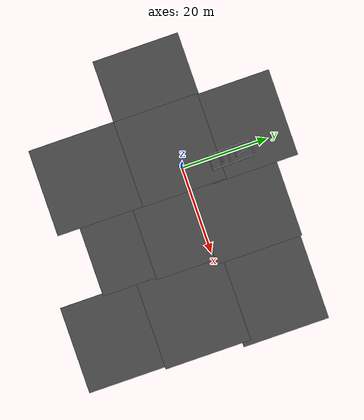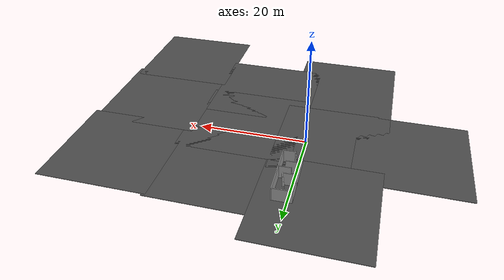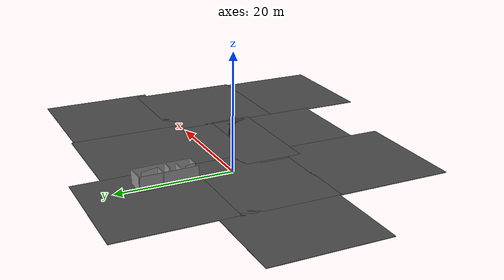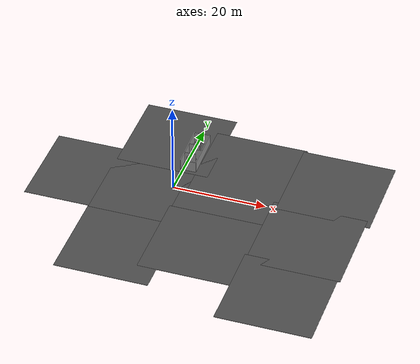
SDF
<sdf version="1.6">
 <world name="default">
  <light name="sun" type="directional">
   <pose>0 0 10 0 -0 0</pose>
   <diffuse>0.8 0.8 0.8 1</diffuse>
   <specular>0.2 0.2 0.2 1</specular>
   <attenuation>
    <range>1000</range>
    <constant>0.9</constant>
    <linear>0.01</linear>
    <quadratic>0.001</quadratic>
   </attenuation>
   <direction>-0.5 0.1 -0.9</direction>
  </light>
  <gravity>0 0 -9.8</gravity>
  <magnetic_field>6e-06 2.3e-05 -4.2e-05</magnetic_field>
  <atmosphere type="adiabatic"/>
  <physics name="default_physics" default="0" type="ode">
   <max_step_size>0.001</max_step_size>
   <real_time_factor>1</real_time_factor>
   <real_time_update_rate>1000</real_time_update_rate>
  </physics>
  <scene><ambient>0.4 0.4 0.4 1</ambient><background>0.7 0.7 0.7 1</background><shadows>1</shadows></scene>
  <audio><device>default</device></audio>
  <spherical_coordinates>
   <surface_model>EARTH_WGS84</surface_model>
   <latitude_deg>0</latitude_deg>
   <longitude_deg>0</longitude_deg>
   <elevation>0</elevation>
   <heading_deg>0</heading_deg>
  </spherical_coordinates>
  <model name="asphalt_plane">
   <static>1</static>
   <link name="link">
    <collision name="collision"><geometry><box><size>20 20 0.1</size></box></geometry></collision>
    <visual name="visual">
     <cast_shadows>0</cast_shadows>
     <geometry><box><size>20 20 0.1</size></box></geometry>
     <material>
      <script>
       <uri>model://asphalt_plane/materials/scripts</uri>
       <uri>model://asphalt_plane/materials/textures</uri>
       <name>vrc/asphalt</name>
      </script>
     </material>
    </visual>
   </link>
   <pose>-4.64285 -21.04 0 0 -0 0</pose>
  </model>
  <model name="asphalt_plane_clone">
   <static>1</static>
   <link name="link">
    <collision name="collision"><geometry><box><size>20 20 0.1</size></box></geometry></collision>
    <visual name="visual">
     <cast_shadows>0</cast_shadows>
     <geometry><box><size>20 20 0.1</size></box></geometry>
     <material>
      <script>
       <uri>model://asphalt_plane/materials/scripts</uri>
       <uri>model://asphalt_plane/materials/textures</uri>
       <name>vrc/asphalt</name>
      </script>
     </material>
    </visual>
   </link>
   <pose>-4.56138 -1.36583 0 0 -0 0</pose>
  </model>
  <model name="asphalt_plane_clone_0">
   <static>1</static>
   <link name="link">
    <collision name="collision"><geometry><box><size>20 20 0.1</size></box></geometry></collision>
    <visual name="visual">
     <cast_shadows>0</cast_shadows>
     <geometry><box><size>20 20 0.1</size></box></geometry>
     <material>
      <script>
       <uri>model://asphalt_plane/materials/scripts</uri>
       <uri>model://asphalt_plane/materials/textures</uri>
       <name>vrc/asphalt</name>
      </script>
     </material>
    </visual>
   </link>
   <pose>-4.35704 15.385 0 0 -0 0</pose>
  </model>
  <model name="asphalt_plane_clone_1">
   <static>1</static>
   <link name="link">
    <collision name="collision"><geometry><box><size>20 20 0.1</size></box></geometry></collision>
    <visual name="visual">
     <cast_shadows>0</cast_shadows>
     <geometry><box><size>20 20 0.1</size></box></geometry>
     <material>
      <script>
       <uri>model://asphalt_plane/materials/scripts</uri>
       <uri>model://asphalt_plane/materials/textures</uri>
       <name>vrc/asphalt</name>
      </script>
     </material>
    </visual>
   </link>
   <pose>12.919 10.3967 0 0 -0 0</pose>
  </model>
  <model name="asphalt_plane_clone_2">
   <static>1</static>
   <link name="link">
    <collision name="collision"><geometry><box><size>20 20 0.1</size></box></geometry></collision>
    <visual name="visual">
     <cast_shadows>0</cast_shadows>
     <geometry><box><size>20 20 0.1</size></box></geometry>
     <material>
      <script>
       <uri>model://asphalt_plane/materials/scripts</uri>
       <uri>model://asphalt_plane/materials/textures</uri>
       <name>vrc/asphalt</name>
      </script>
     </material>
    </visual>
   </link>
   <pose>11.7465 -3.39792 0 0 -0 0</pose>
  </model>
  <model name="asphalt_plane_clone_3">
   <static>1</static>
   <link name="link">
    <collision name="collision"><geometry><box><size>20 20 0.1</size></box></geometry></collision>
    <visual name="visual">
     <cast_shadows>0</cast_shadows>
     <geometry><box><size>20 20 0.1</size></box></geometry>
     <material>
      <script>
       <uri>model://asphalt_plane/materials/scripts</uri>
       <uri>model://asphalt_plane/materials/textures</uri>
       <name>vrc/asphalt</name>
      </script>
     </material>
    </visual>
   </link>
   <pose>11.2537 -15.8872 0 0 -0 0</pose>
  </model>
  <model name="asphalt_plane_clone_clone">
   <static>1</static>
   <link name="link">
    <collision name="collision"><geometry><box><size>20 20 0.1</size></box></geometry></collision>
    <visual name="visual">
     <cast_shadows>0</cast_shadows>
     <geometry><box><size>20 20 0.1</size></box></geometry>
     <material>
      <script>
       <uri>model://asphalt_plane/materials/scripts</uri>
       <uri>model://asphalt_plane/materials/textures</uri>
       <name>vrc/asphalt</name>
      </script>
     </material>
    </visual>
   </link>
   <pose>31.226 -8.00237 0 0 -0 0</pose>
  </model>
  <model name="asphalt_plane_clone_clone_0">
   <static>1</static>
   <link name="link">
    <collision name="collision"><geometry><box><size>20 20 0.1</size></box></geometry></collision>
    <visual name="visual">
     <cast_shadows>0</cast_shadows>
     <geometry><box><size>20 20 0.1</size></box></geometry>
     <material>
      <script>
       <uri>model://asphalt_plane/materials/scripts</uri>
       <uri>model://asphalt_plane/materials/textures</uri>
       <name>vrc/asphalt</name>
      </script>
     </material>
    </visual>
   </link>
   <pose>30.6756 -25.7849 0 0 -0 0</pose>
  </model>
  <model name="asphalt_plane_clone_clone_1">
   <static>1</static>
   <link name="link">
    <collision name="collision"><geometry><box><size>20 20 0.1</size></box></geometry></collision>
    <visual name="visual">
     <cast_shadows>0</cast_shadows>
     <geometry><box><size>20 20 0.1</size></box></geometry>
     <material>
      <script>
       <uri>model://asphalt_plane/materials/scripts</uri>
       <uri>model://asphalt_plane/materials/textures</uri>
       <name>vrc/asphalt</name>
      </script>
     </material>
    </visual>
   </link>
   <pose>32.2225 10.0057 0 0 -0 0</pose>
  </model>
  <model name="asphalt_plane_clone_clone_2">
   <static>1</static>
   <link name="link">
    <collision name="collision"><geometry><box><size>20 20 0.1</size></box></geometry></collision>
    <visual name="visual">
     <cast_shadows>0</cast_shadows>
     <geometry><box><size>20 20 0.1</size></box></geometry>
     <material>
      <script>
       <uri>model://asphalt_plane/materials/scripts</uri>
       <uri>model://asphalt_plane/materials/textures</uri>
       <name>vrc/asphalt</name>
      </script>
     </material>
    </visual>
   </link>
   <pose>-18.7535 -1.06566 0 0 -0 0</pose>
  </model>
  <model name="simple_maze">
   <pose>0.99057 11.222 0 0 -0 1.5962</pose>
   <link name="Wall_0">
    <collision name="Wall_0_Collision">
     <geometry><box><size>10 0.15 2.5</size></box></geometry>
     <pose>0 0 1.25 0 -0 0</pose>
    </collision>
    <visual name="Wall_0_Visual">
     <pose>0 0 1.25 0 -0 0</pose>
     <geometry><box><size>10 0.15 2.5</size></box></geometry>
     <material>
      <script><uri>file://media/materials/scripts/gazebo.material</uri><name>Gazebo/Grey</name></script>
      <ambient>1 1 1 1</ambient>
     </material>
     <meta><layer>0</layer></meta>
    </visual>
    <pose>0.008428 1.67 0 0 -0 0</pose>
   </link>
   <link name="Wall_1">
    <collision name="Wall_1_Collision">
     <geometry><box><size>3.5 0.15 2.5</size></box></geometry>
     <pose>0 0 1.25 0 -0 0</pose>
    </collision>
    <visual name="Wall_1_Visual">
     <pose>0 0 1.25 0 -0 0</pose>
     <geometry><box><size>3.5 0.15 2.5</size></box></geometry>
     <material>
      <script><uri>file://media/materials/scripts/gazebo.material</uri><name>Gazebo/Grey</name></script>
      <ambient>1 1 1 1</ambient>
     </material>
     <meta><layer>0</layer></meta>
    </visual>
    <pose>4.93343 -0.005 0 0 -0 -1.5708</pose>
   </link>
   <link name="Wall_11">
    <collision name="Wall_11_Collision">
     <geometry><box><size>2.5 0.15 2.5</size></box></geometry>
     <pose>0 0 1.25 0 -0 0</pose>
    </collision>
    <visual name="Wall_11_Visual">
     <pose>0 0 1.25 0 -0 0</pose>
     <geometry><box><size>2.5 0.15 2.5</size></box></geometry>
     <material>
      <script><uri>file://media/materials/scripts/gazebo.material</uri><name>Gazebo/Grey</name></script>
      <ambient>1 1 1 1</ambient>
     </material>
     <meta><layer>0</layer></meta>
    </visual>
    <pose>0.963428 0.505 0 0 -0 -1.5708</pose>
   </link>
   <link name="Wall_12">
    <collision name="Wall_12_Collision">
     <geometry><box><size>3.25 0.15 2.5</size></box></geometry>
     <pose>0 0 1.25 0 -0 0</pose>
    </collision>
    <visual name="Wall_12_Visual">
     <pose>0 0 1.25 0 -0 0</pose>
     <geometry><box><size>3.25 0.15 2.5</size></box></geometry>
     <material>
      <script><uri>file://media/materials/scripts/gazebo.material</uri><name>Gazebo/Grey</name></script>
      <ambient>1 1 1 1</ambient>
     </material>
     <meta><layer>0</layer></meta>
    </visual>
    <pose>2.46061 -0.26883 0 0 -0 0.261799</pose>
   </link>
   <link name="Wall_2">
    <collision name="Wall_2_Collision">
     <geometry><box><size>10 0.15 2.5</size></box></geometry>
     <pose>0 0 1.25 0 -0 0</pose>
    </collision>
    <visual name="Wall_2_Visual">
     <pose>0 0 1.25 0 -0 0</pose>
     <geometry><box><size>10 0.15 2.5</size></box></geometry>
     <material>
      <script><uri>file://media/materials/scripts/gazebo.material</uri><name>Gazebo/Grey</name></script>
      <ambient>1 1 1 1</ambient>
     </material>
     <meta><layer>0</layer></meta>
    </visual>
    <pose>0.008428 -1.68 0 0 -0 3.14159</pose>
   </link>
   <link name="Wall_3">
    <collision name="Wall_3_Collision">
     <geometry><box><size>2.25 0.15 2.5</size></box></geometry>
     <pose>0 0 1.25 0 -0 0</pose>
    </collision>
    <visual name="Wall_3_Visual">
     <pose>0 0 1.25 0 -0 0</pose>
     <geometry><box><size>2.25 0.15 2.5</size></box></geometry>
     <material>
      <script><uri>file://media/materials/scripts/gazebo.material</uri><name>Gazebo/Grey</name></script>
      <ambient>1 1 1 1</ambient>
     </material>
     <meta><layer>0</layer></meta>
    </visual>
    <pose>-4.91657 -0.63 0 0 -0 1.5708</pose>
   </link>
   <link name="Wall_4">
    <collision name="Wall_4_Collision">
     <geometry><box><size>2 0.15 2.5</size></box></geometry>
     <pose>0 0 1.25 0 -0 0</pose>
    </collision>
    <visual name="Wall_4_Visual">
     <pose>0 0 1.25 0 -0 0</pose>
     <geometry><box><size>2 0.15 2.5</size></box></geometry>
     <material>
      <script><uri>file://media/materials/scripts/gazebo.material</uri><name>Gazebo/Grey</name></script>
      <ambient>1 1 1 1</ambient>
     </material>
     <meta><layer>0</layer></meta>
    </visual>
    <pose>-4.02309 0.659408 0 0 -0 0.261799</pose>
   </link>
   <link name="Wall_5">
    <collision name="Wall_5_Collision">
     <geometry><box><size>0.15 0.15 2.5</size></box></geometry>
     <pose>0 0 1.25 0 -0 0</pose>
    </collision>
    <visual name="Wall_5_Visual">
     <pose>0 0 1.25 0 -0 0</pose>
     <geometry><box><size>0.15 0.15 2.5</size></box></geometry>
     <material>
      <script><uri>file://media/materials/scripts/gazebo.material</uri><name>Gazebo/Grey</name></script>
      <ambient>1 1 1 1</ambient>
     </material>
     <meta><layer>0</layer></meta>
    </visual>
    <pose>-3.12961 0.898815 0 0 -0 0</pose>
   </link>
   <link name="Wall_7">
    <collision name="Wall_7_Collision">
     <geometry><box><size>2.5 0.15 2.5</size></box></geometry>
     <pose>0 0 1.25 0 -0 0</pose>
    </collision>
    <visual name="Wall_7_Visual">
     <pose>0 0 1.25 0 -0 0</pose>
     <geometry><box><size>2.5 0.15 2.5</size></box></geometry>
     <material>
      <script><uri>file://media/materials/scripts/gazebo.material</uri><name>Gazebo/Grey</name></script>
      <ambient>1 1 1 1</ambient>
     </material>
     <meta><layer>0</layer></meta>
    </visual>
    <pose>-2.14657 0.485 0 0 -0 -1.5708</pose>
   </link>
   <link name="Wall_9">
    <collision name="Wall_9_Collision">
     <geometry><box><size>2.25 0.15 2.5</size></box></geometry>
     <pose>0 0 1.25 0 -0 0</pose>
    </collision>
    <visual name="Wall_9_Visual">
     <pose>0 0 1.25 0 -0 0</pose>
     <geometry><box><size>2.25 0.15 2.5</size></box></geometry>
     <material>
      <script><uri>file://media/materials/scripts/gazebo.material</uri><name>Gazebo/Grey</name></script>
      <ambient>1 1 1 1</ambient>
     </material>
     <meta><layer>0</layer></meta>
    </visual>
    <pose>-0.586572 -0.61 0 0 -0 1.5708</pose>
   </link>
   <static>1</static>
  </model>
 </world>
</sdf>
